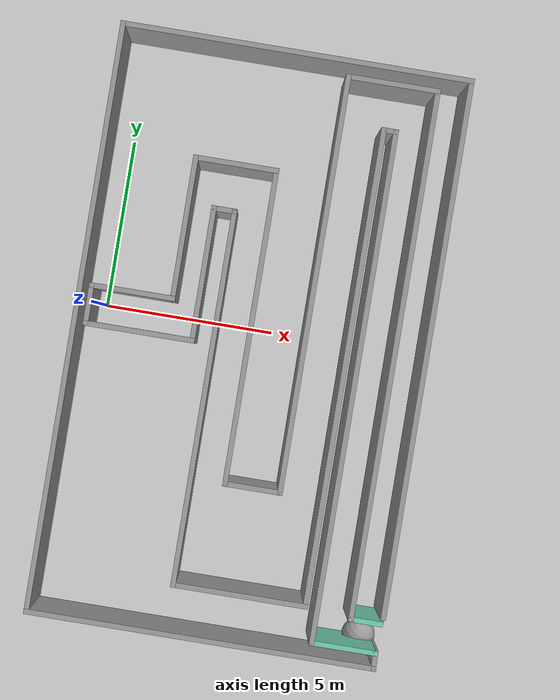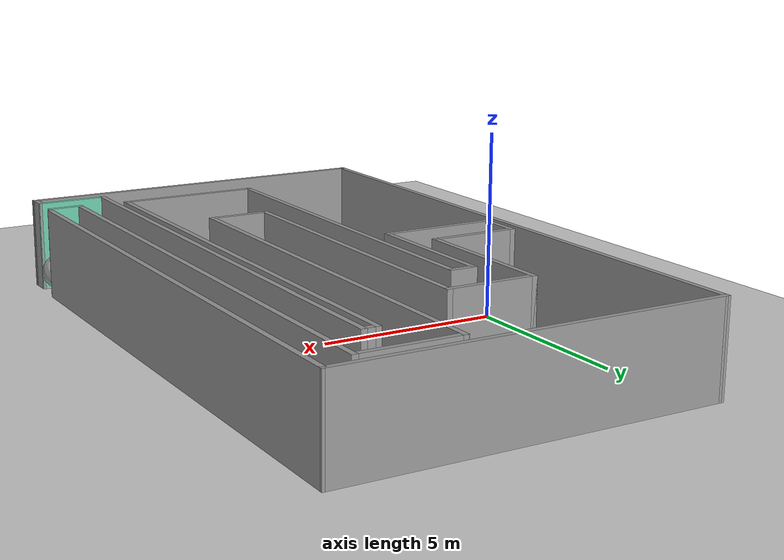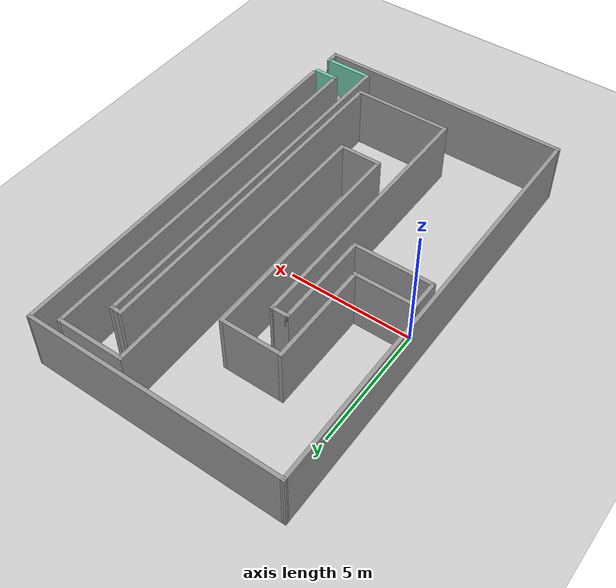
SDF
<sdf version="1.7">
 <world name="new_world">
  <model name="ground_plane">
   <static>1</static>
   <link name="link">
    <collision name="collision">
     <geometry><plane><normal>0 0 1</normal><size>100 100</size></plane></geometry>
     <surface><friction><ode><mu>100</mu><mu2>50</mu2></ode></friction></surface>
    </collision>
    <visual name="visual">
     <cast_shadows>0</cast_shadows>
     <geometry><plane><normal>0 0 1</normal><size>100 100</size></plane></geometry>
     <material>
      <script><uri>file://media/materials/scripts/gazebo.material</uri><name>Gazebo/Grey</name></script>
     </material>
    </visual>
   </link>
  </model>
  <light name="sun" type="directional">
   <pose>0 0 10 0 -0 0</pose>
   <diffuse>0.8 0.8 0.8 1</diffuse>
   <specular>0.2 0.2 0.2 1</specular>
   <attenuation>
    <range>1000</range>
    <constant>0.9</constant>
    <linear>0.01</linear>
    <quadratic>0.001</quadratic>
   </attenuation>
   <direction>-0.5 0.1 -0.9</direction>
   <spot><inner_angle>0</inner_angle><outer_angle>0</outer_angle><falloff>0</falloff></spot>
  </light>
  <gravity>0 0 -9.8</gravity>
  <magnetic_field>6e-06 2.3e-05 -4.2e-05</magnetic_field>
  <atmosphere type="adiabatic"/>
  <physics type="ode">
   <max_step_size>0.001</max_step_size>
   <real_time_factor>1</real_time_factor>
   <real_time_update_rate>1000</real_time_update_rate>
  </physics>
  <scene><ambient>0.4 0.4 0.4 1</ambient><background>0.7 0.7 0.7 1</background><shadows>1</shadows></scene>
  <audio><device>default</device></audio>
  <spherical_coordinates>
   <surface_model>EARTH_WGS84</surface_model>
   <latitude_deg>0</latitude_deg>
   <longitude_deg>0</longitude_deg>
   <elevation>0</elevation>
   <heading_deg>0</heading_deg>
  </spherical_coordinates>
  <model name="Final_Maze">
   <pose>4.40685 -0.50162 0 0 -0 0</pose>
   <link name="Wall_18">
    <collision name="Wall_18_Collision">
     <geometry><box><size>10.25 0.15 2.5</size></box></geometry>
     <pose>0 0 1.25 0 -0 0</pose>
    </collision>
    <visual name="Wall_18_Visual">
     <pose>0 0 1.25 0 -0 0</pose>
     <geometry><box><size>10.25 0.15 2.5</size></box></geometry>
     <material>
      <script><uri>file://media/materials/scripts/gazebo.material</uri><name>Gazebo/Grey</name></script>
      <ambient>1 1 1 1</ambient>
     </material>
     <meta><layer>0</layer></meta>
    </visual>
    <pose>-0.022182 -8.54871 0 0 -0 3.14159</pose>
   </link>
   <link name="Wall_20">
    <collision name="Wall_20_Collision">
     <geometry><box><size>17.25 0.15 2.5</size></box></geometry>
     <pose>0 0 1.25 0 -0 0</pose>
    </collision>
    <visual name="Wall_20_Visual">
     <pose>0 0 1.25 0 -0 0</pose>
     <geometry><box><size>17.25 0.15 2.5</size></box></geometry>
     <material>
      <script><uri>file://media/materials/scripts/gazebo.material</uri><name>Gazebo/Grey</name></script>
      <ambient>1 1 1 1</ambient>
     </material>
     <meta><layer>0</layer></meta>
    </visual>
    <pose>-5.07218 0.001287 0 0 -0 1.5708</pose>
   </link>
   <link name="Wall_22">
    <collision name="Wall_22_Collision">
     <geometry><box><size>10.2944 0.15 2.5</size></box></geometry>
     <pose>0 0 1.25 0 -0 0</pose>
    </collision>
    <visual name="Wall_22_Visual">
     <pose>0 0 1.25 0 -0 0</pose>
     <geometry><box><size>10.2944 0.15 2.5</size></box></geometry>
     <material>
      <script><uri>file://media/materials/scripts/gazebo.material</uri><name>Gazebo/Grey</name></script>
      <ambient>1 1 1 1</ambient>
     </material>
     <meta><layer>0</layer></meta>
    </visual>
    <pose>0 8.54476 0 0 -0 -0.001287</pose>
   </link>
   <link name="Wall_24">
    <collision name="Wall_24_Collision">
     <geometry><box><size>15.75 0.15 2.5</size></box></geometry>
     <pose>0 0 1.25 0 -0 0</pose>
    </collision>
    <visual name="Wall_24_Visual">
     <pose>0 0 1.25 0 -0 0</pose>
     <geometry><box><size>15.75 0.15 2.5</size></box></geometry>
     <material>
      <script><uri>file://media/materials/scripts/gazebo.material</uri><name>Gazebo/Grey</name></script>
      <ambient>1 1 1 1</ambient>
     </material>
     <meta><layer>0</layer></meta>
    </visual>
    <pose>5.07218 0.738232 0 0 -0 -1.5708</pose>
   </link>
   <link name="Wall_27">
    <collision name="Wall_27_Collision">
     <geometry><box><size>1.25 0.15 2.5</size></box></geometry>
     <pose>0 0 1.25 0 -0 0</pose>
    </collision>
    <visual name="Wall_27_Visual">
     <pose>0 0 1.25 0 -0 0</pose>
     <geometry><box><size>1.25 0.15 2.5</size></box></geometry>
     <material>
      <script><uri>file://media/materials/scripts/gazebo.material</uri><name>Gazebo/Grey</name></script>
      <ambient>1 1 1 1</ambient>
     </material>
     <meta><layer>0</layer></meta>
    </visual>
    <pose>-4.73824 0.443553 0 0 -0 -1.5708</pose>
   </link>
   <link name="Wall_29">
    <collision name="Wall_29_Collision">
     <geometry><box><size>2.5 0.15 2.5</size></box></geometry>
     <pose>0 0 1.25 0 -0 0</pose>
    </collision>
    <visual name="Wall_29_Visual">
     <pose>0 0 1.25 0 -0 0</pose>
     <geometry><box><size>2.5 0.15 2.5</size></box></geometry>
     <material>
      <script><uri>file://media/materials/scripts/gazebo.material</uri><name>Gazebo/Grey</name></script>
      <ambient>1 1 1 1</ambient>
     </material>
     <meta><layer>0</layer></meta>
    </visual>
    <pose>-3.56324 0.993553 0 0 -0 0</pose>
   </link>
   <link name="Wall_31">
    <collision name="Wall_31_Collision">
     <geometry><box><size>4.25 0.15 2.5</size></box></geometry>
     <pose>0 0 1.25 0 -0 0</pose>
    </collision>
    <visual name="Wall_31_Visual">
     <pose>0 0 1.25 0 -0 0</pose>
     <geometry><box><size>4.25 0.15 2.5</size></box></geometry>
     <material>
      <script><uri>file://media/materials/scripts/gazebo.material</uri><name>Gazebo/Grey</name></script>
      <ambient>1 1 1 1</ambient>
     </material>
     <meta><layer>0</layer></meta>
    </visual>
    <pose>-2.38824 3.04355 0 0 -0 1.5708</pose>
   </link>
   <link name="Wall_32">
    <collision name="Wall_32_Collision">
     <geometry><box><size>2.5 0.15 2.5</size></box></geometry>
     <pose>0 0 1.25 0 -0 0</pose>
    </collision>
    <visual name="Wall_32_Visual">
     <pose>0 0 1.25 0 -0 0</pose>
     <geometry><box><size>2.5 0.15 2.5</size></box></geometry>
     <material>
      <script><uri>file://media/materials/scripts/gazebo.material</uri><name>Gazebo/Grey</name></script>
      <ambient>1 1 1 1</ambient>
     </material>
     <meta><layer>0</layer></meta>
    </visual>
    <pose>-1.21324 5.09355 0 0 -0 0</pose>
   </link>
   <link name="Wall_35">
    <collision name="Wall_35_Collision">
     <geometry><box><size>9.25 0.15 2.5</size></box></geometry>
     <pose>0 0 1.25 0 -0 0</pose>
    </collision>
    <visual name="Wall_35_Visual">
     <pose>0 0 1.25 0 -0 0</pose>
     <geometry><box><size>9.25 0.15 2.5</size></box></geometry>
     <material>
      <script><uri>file://media/materials/scripts/gazebo.material</uri><name>Gazebo/Grey</name></script>
      <ambient>1 1 1 1</ambient>
     </material>
     <meta><layer>0</layer></meta>
    </visual>
    <pose>-0.038236 0.543553 0 0 -0 -1.5708</pose>
   </link>
   <link name="Wall_36">
    <collision name="Wall_36_Collision">
     <geometry><box><size>1.75 0.15 2.5</size></box></geometry>
     <pose>0 0 1.25 0 -0 0</pose>
    </collision>
    <visual name="Wall_36_Visual">
     <pose>0 0 1.25 0 -0 0</pose>
     <geometry><box><size>1.75 0.15 2.5</size></box></geometry>
     <material>
      <script><uri>file://media/materials/scripts/gazebo.material</uri><name>Gazebo/Grey</name></script>
      <ambient>1 1 1 1</ambient>
     </material>
     <meta><layer>0</layer></meta>
    </visual>
    <pose>0.761764 -4.00645 0 0 -0 0</pose>
   </link>
   <link name="Wall_37">
    <collision name="Wall_37_Collision">
     <geometry><box><size>12.25 0.15 2.5</size></box></geometry>
     <pose>0 0 1.25 0 -0 0</pose>
    </collision>
    <visual name="Wall_37_Visual">
     <pose>0 0 1.25 0 -0 0</pose>
     <geometry><box><size>12.25 0.15 2.5</size></box></geometry>
     <material>
      <script><uri>file://media/materials/scripts/gazebo.material</uri><name>Gazebo/Grey</name></script>
      <ambient>1 1 1 1</ambient>
     </material>
     <meta><layer>0</layer></meta>
    </visual>
    <pose>1.56176 2.04355 0 0 -0 1.5708</pose>
   </link>
   <link name="Wall_38">
    <collision name="Wall_38_Collision">
     <geometry><box><size>2.75 0.15 2.5</size></box></geometry>
     <pose>0 0 1.25 0 -0 0</pose>
    </collision>
    <visual name="Wall_38_Visual">
     <pose>0 0 1.25 0 -0 0</pose>
     <geometry><box><size>2.75 0.15 2.5</size></box></geometry>
     <material>
      <script><uri>file://media/materials/scripts/gazebo.material</uri><name>Gazebo/Grey</name></script>
      <ambient>1 1 1 1</ambient>
     </material>
     <meta><layer>0</layer></meta>
    </visual>
    <pose>2.86176 8.09355 0 0 -0 0</pose>
   </link>
   <link name="Wall_41">
    <collision name="Wall_41_Collision">
     <geometry><box><size>15.5 0.15 2.5</size></box></geometry>
     <pose>0 0 1.25 0 -0 0</pose>
    </collision>
    <visual name="Wall_41_Visual">
     <pose>0 0 1.25 0 -0 0</pose>
     <geometry><box><size>15.5 0.15 2.5</size></box></geometry>
     <material>
      <script><uri>file://media/materials/scripts/gazebo.material</uri><name>Gazebo/Grey</name></script>
      <ambient>1 1 1 1</ambient>
     </material>
     <meta><layer>0</layer></meta>
    </visual>
    <pose>4.16176 0.418553 0 0 -0 -1.5708</pose>
   </link>
   <link name="Wall_45">
    <collision name="Wall_45_Collision">
     <geometry><box><size>3.25 0.15 2.5</size></box></geometry>
     <pose>0 0 1.25 0 -0 0</pose>
    </collision>
    <visual name="Wall_45_Visual">
     <pose>0 0 1.25 0 -0 0</pose>
     <geometry><box><size>3.25 0.15 2.5</size></box></geometry>
     <material>
      <script><uri>file://media/materials/scripts/gazebo.material</uri><name>Gazebo/Grey</name></script>
      <ambient>1 1 1 1</ambient>
     </material>
     <meta><layer>0</layer></meta>
    </visual>
    <pose>-3.18824 -0.106447 0 0 -0 0</pose>
   </link>
   <link name="Wall_46">
    <collision name="Wall_46_Collision">
     <geometry><box><size>4 0.15 2.5</size></box></geometry>
     <pose>0 0 1.25 0 -0 0</pose>
    </collision>
    <visual name="Wall_46_Visual">
     <pose>0 0 1.25 0 -0 0</pose>
     <geometry><box><size>4 0.15 2.5</size></box></geometry>
     <material>
      <script><uri>file://media/materials/scripts/gazebo.material</uri><name>Gazebo/Grey</name></script>
      <ambient>1 1 1 1</ambient>
     </material>
     <meta><layer>0</layer></meta>
    </visual>
    <pose>-1.63824 1.81855 0 0 -0 1.5708</pose>
   </link>
   <link name="Wall_47">
    <collision name="Wall_47_Collision">
     <geometry><box><size>0.75 0.15 2.5</size></box></geometry>
     <pose>0 0 1.25 0 -0 0</pose>
    </collision>
    <visual name="Wall_47_Visual">
     <pose>0 0 1.25 0 -0 0</pose>
     <geometry><box><size>0.75 0.15 2.5</size></box></geometry>
     <material>
      <script><uri>file://media/materials/scripts/gazebo.material</uri><name>Gazebo/Grey</name></script>
      <ambient>1 1 1 1</ambient>
     </material>
     <meta><layer>0</layer></meta>
    </visual>
    <pose>-1.33824 3.74355 0 0 -0 0</pose>
   </link>
   <link name="Wall_48">
    <collision name="Wall_48_Collision">
     <geometry><box><size>11 0.15 2.5</size></box></geometry>
     <pose>0 0 1.25 0 -0 0</pose>
    </collision>
    <visual name="Wall_48_Visual">
     <pose>0 0 1.25 0 -0 0</pose>
     <geometry><box><size>11 0.15 2.5</size></box></geometry>
     <material>
      <script><uri>file://media/materials/scripts/gazebo.material</uri><name>Gazebo/Grey</name></script>
      <ambient>1 1 1 1</ambient>
     </material>
     <meta><layer>0</layer></meta>
    </visual>
    <pose>-1.03824 -1.68145 0 0 -0 -1.5708</pose>
   </link>
   <link name="Wall_49">
    <collision name="Wall_49_Collision">
     <geometry><box><size>4 0.15 2.5</size></box></geometry>
     <pose>0 0 1.25 0 -0 0</pose>
    </collision>
    <visual name="Wall_49_Visual">
     <pose>0 0 1.25 0 -0 0</pose>
     <geometry><box><size>4 0.15 2.5</size></box></geometry>
     <material>
      <script><uri>file://media/materials/scripts/gazebo.material</uri><name>Gazebo/Grey</name></script>
      <ambient>1 1 1 1</ambient>
     </material>
     <meta><layer>0</layer></meta>
    </visual>
    <pose>0.886764 -7.10645 0 0 -0 0</pose>
   </link>
   <link name="Wall_50">
    <collision name="Wall_50_Collision">
     <geometry><box><size>14 0.15 2.5</size></box></geometry>
     <pose>0 0 1.25 0 -0 0</pose>
    </collision>
    <visual name="Wall_50_Visual">
     <pose>0 0 1.25 0 -0 0</pose>
     <geometry><box><size>14 0.15 2.5</size></box></geometry>
     <material>
      <script><uri>file://media/materials/scripts/gazebo.material</uri><name>Gazebo/Grey</name></script>
      <ambient>1 1 1 1</ambient>
     </material>
     <meta><layer>0</layer></meta>
    </visual>
    <pose>2.81176 -0.181447 0 0 -0 1.5708</pose>
   </link>
   <link name="Wall_53">
    <collision name="Wall_53_Collision">
     <geometry><box><size>0.5 0.15 2.5</size></box></geometry>
     <pose>0 0 1.25 0 -0 0</pose>
    </collision>
    <visual name="Wall_53_Visual">
     <pose>0 0 1.25 0 -0 0</pose>
     <geometry><box><size>0.5 0.15 2.5</size></box></geometry>
     <material>
      <script><uri>file://media/materials/scripts/gazebo.material</uri><name>Gazebo/Grey</name></script>
      <ambient>1 1 1 1</ambient>
     </material>
     <meta><layer>0</layer></meta>
    </visual>
    <pose>2.98676 6.74355 0 0 -0 0</pose>
   </link>
   <link name="Wall_54">
    <collision name="Wall_54_Collision">
     <geometry><box><size>15 0.15 2.5</size></box></geometry>
     <pose>0 0 1.25 0 -0 0</pose>
    </collision>
    <visual name="Wall_54_Visual">
     <pose>0 0 1.25 0 -0 0</pose>
     <geometry><box><size>15 0.15 2.5</size></box></geometry>
     <material>
      <script><uri>file://media/materials/scripts/gazebo.material</uri><name>Gazebo/Grey</name></script>
      <ambient>1 1 1 1</ambient>
     </material>
     <meta><layer>0</layer></meta>
    </visual>
    <pose>3.16176 -0.681447 0 0 -0 -1.5708</pose>
   </link>
   <link name="Wall_57">
    <collision name="Wall_57_Collision">
     <geometry><box><size>1 0.15 2.5</size></box></geometry>
     <pose>0 0 1.25 0 -0 0</pose>
    </collision>
    <visual name="Wall_57_Visual">
     <pose>0 0 1.25 0 -0 0</pose>
     <geometry><box><size>1 0.15 2.5</size></box></geometry>
     <material>
      <script><uri>file://media/materials/scripts/gazebo.material</uri><name>Gazebo/Grey</name></script>
      <ambient>0.435294 0.796078 0.67451 1</ambient>
     </material>
     <meta><layer>0</layer></meta>
    </visual>
    <pose>4.58676 -7.25645 0 0 -0 0</pose>
   </link>
   <link name="Wall_59">
    <collision name="Wall_59_Collision">
     <geometry><box><size>2 0.15 2.5</size></box></geometry>
     <pose>0 0 1.25 0 -0 0</pose>
    </collision>
    <visual name="Wall_59_Visual">
     <pose>0 0 1.25 0 -0 0</pose>
     <geometry><box><size>2 0.15 2.5</size></box></geometry>
     <material>
      <script><uri>file://media/materials/scripts/gazebo.material</uri><name>Gazebo/Grey</name></script>
      <ambient>0.435294 0.796078 0.67451 1</ambient>
     </material>
     <meta><layer>0</layer></meta>
    </visual>
    <pose>4.08676 -8.10645 0 0 -0 0</pose>
   </link>
   <link name="Wall_60">
    <collision name="Wall_60_Collision">
     <geometry><box><size>0.592557 0.15 2.5</size></box></geometry>
     <pose>0 0 1.25 0 -0 0</pose>
    </collision>
    <visual name="Wall_60_Visual">
     <pose>0 0 1.25 0 -0 0</pose>
     <geometry><box><size>0.592557 0.15 2.5</size></box></geometry>
     <material>
      <script><uri>file://media/materials/scripts/gazebo.material</uri><name>Gazebo/Grey</name></script>
      <ambient>1 1 1 1</ambient>
     </material>
     <meta><layer>0</layer></meta>
    </visual>
    <pose>5.01979 -8.32758 0 0 -0 -1.53451</pose>
   </link>
   <static>1</static>
  </model>
  <model name="Maze5">
   <link name="link_1">
    <inertial>
     <mass>1</mass>
     <inertia><ixx>0.1</ixx><ixy>0</ixy><ixz>0</ixz><iyy>0.1</iyy><iyz>0</iyz><izz>0.1</izz></inertia>
    </inertial>
    <pose>-1e-06 2e-06 0 0 -0 0</pose>
    <visual name="visual">
     <geometry><sphere><radius>0.5</radius></sphere></geometry>
     <material>
      <lighting>1</lighting>
      <script><uri>file://media/materials/scripts/gazebo.material</uri><name>Gazebo/Grey</name></script>
      <shader type="pixel"/>
     </material>
    </visual>
    <collision name="collision">
     <geometry><sphere><radius>0.5</radius></sphere></geometry>
     <surface>
      <friction>
       <ode><mu>1</mu><mu2>1</mu2><fdir1>0 0 0</fdir1><slip1>0</slip1><slip2>0</slip2></ode>
       <torsional>
        <coefficient>1</coefficient>
        <patch_radius>0</patch_radius>
        <surface_radius>0</surface_radius>
        <use_patch_radius>1</use_patch_radius>
        <ode><slip>0</slip></ode>
       </torsional>
      </friction>
      <bounce><restitution_coefficient>0</restitution_coefficient><threshold>1e+06</threshold></bounce>
      <contact>
       <collide_without_contact>0</collide_without_contact>
       <collide_without_contact_bitmask>1</collide_without_contact_bitmask>
       <collide_bitmask>1</collide_bitmask>
       <ode>
        <soft_cfm>0</soft_cfm>
        <soft_erp>0.2</soft_erp>
        <kp>1e+13</kp>
        <kd>1</kd>
        <max_vel>0.01</max_vel>
        <min_depth>0</min_depth>
       </ode>
       <bullet>
        <split_impulse>1</split_impulse>
        <split_impulse_penetration_threshold>-0.01</split_impulse_penetration_threshold>
        <soft_cfm>0</soft_cfm>
        <soft_erp>0.2</soft_erp>
        <kp>1e+13</kp>
        <kd>1</kd>
       </bullet>
      </contact>
     </surface>
    </collision>
   </link>
   <static>0</static>
   <pose>9.02203 -8.46155 0.499901 3.11984 0.996763 1.16519</pose>
  </model>
 </world>
</sdf>
